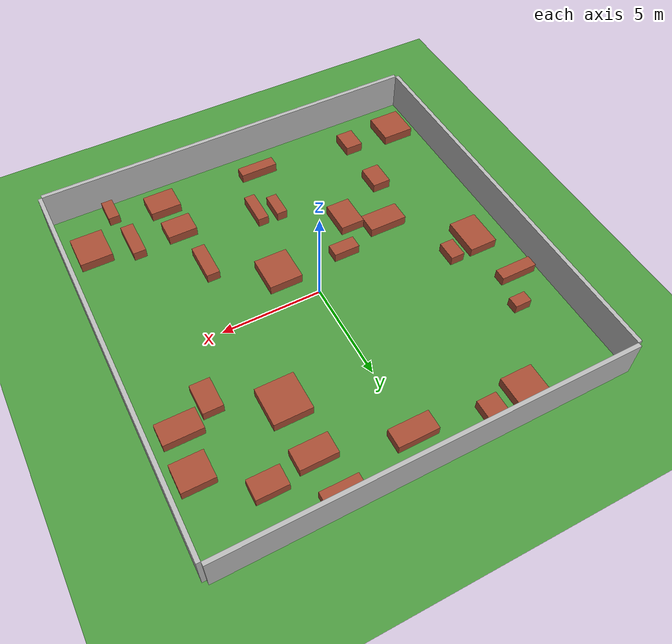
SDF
<?xml version='1.0' encoding='utf-8'?>
<sdf version="1.6"><world name="default"><physics type="ode"><real_time_update_rate>1000</real_time_update_rate><gravity>0 0 -9.81</gravity></physics><model name="ground_plane"><static>true</static><link name="ground_link"><collision name="collision"><geometry><plane><normal>0 0 1</normal><size>20 20</size></plane></geometry></collision><visual name="visual"><geometry><plane><normal>0 0 1</normal><size>20 20</size></plane></geometry><material><script><uri>file://media/materials/scripts/gazebo.material</uri><name>Gazebo/Grass</name></script></material></visual></link></model><model name="wall_north"><static>true</static><pose>0 10.1 1.0 0 0 0</pose><link name="link"><collision name="collision"><geometry><box><size>20 0.2 2.0</size></box></geometry></collision><visual name="visual"><geometry><box><size>20 0.2 2.0</size></box></geometry></visual></link></model><model name="wall_south"><static>true</static><pose>0 -10.1 1.0 0 0 0</pose><link name="link"><collision name="collision"><geometry><box><size>20 0.2 2.0</size></box></geometry></collision><visual name="visual"><geometry><box><size>20 0.2 2.0</size></box></geometry></visual></link></model><model name="wall_east"><static>true</static><pose>10.1 0 1.0 0 0 0</pose><link name="link"><collision name="collision"><geometry><box><size>0.2 20 2.0</size></box></geometry></collision><visual name="visual"><geometry><box><size>0.2 20 2.0</size></box></geometry></visual></link></model><model name="wall_west"><static>true</static><pose>-10.1 0 1.0 0 0 0</pose><link name="link"><collision name="collision"><geometry><box><size>0.2 20 2.0</size></box></geometry></collision><visual name="visual"><geometry><box><size>0.2 20 2.0</size></box></geometry></visual></link></model><include><uri>model://sun</uri></include><model name="box_0"><pose>-6.09 -8.16 0.25 0 0 0</pose><static>false</static><link name="link"><collision name="collision"><geometry><box><size>0.9 1.18 0.5</size></box></geometry></collision><visual name="visual"><geometry><box><size>0.9 1.18 0.5</size></box></geometry><material><script><uri>file://media/materials/scripts/gazebo.material</uri><name>Gazebo/Bricks</name></script></material></visual></link></model><model name="box_1"><pose>-8.72 -8.16 0.25 0 0 0</pose><static>false</static><link name="link"><collision name="collision"><geometry><box><size>1.63 1.64 0.5</size></box></geometry></collision><visual name="visual"><geometry><box><size>1.63 1.64 0.5</size></box></geometry><material><script><uri>file://media/materials/scripts/gazebo.material</uri><name>Gazebo/Bricks</name></script></material></visual></link></model><model name="box_2"><pose>1.26 -1.85 0.25 0 0 0</pose><static>false</static><link name="link"><collision name="collision"><geometry><box><size>1.67 1.81 0.5</size></box></geometry></collision><visual name="visual"><geometry><box><size>1.67 1.81 0.5</size></box></geometry><material><script><uri>file://media/materials/scripts/gazebo.material</uri><name>Gazebo/Bricks</name></script></material></visual></link></model><model name="box_3"><pose>8.85 5.92 0.25 0 0 0</pose><static>false</static><link name="link"><collision name="collision"><geometry><box><size>1.56 1.38 0.5</size></box></geometry></collision><visual name="visual"><geometry><box><size>1.56 1.38 0.5</size></box></geometry><material><script><uri>file://media/materials/scripts/gazebo.material</uri><name>Gazebo/Bricks</name></script></material></visual></link></model><model name="box_4"><pose>-0.77 -8.58 0.25 0 0 0</pose><static>false</static><link name="link"><collision name="collision"><geometry><box><size>1.94 0.58 0.5</size></box></geometry></collision><visual name="visual"><geometry><box><size>1.94 0.58 0.5</size></box></geometry><material><script><uri>file://media/materials/scripts/gazebo.material</uri><name>Gazebo/Bricks</name></script></material></visual></link></model><model name="box_5"><pose>-4.86 -2.39 0.25 0 0 0</pose><static>false</static><link name="link"><collision name="collision"><geometry><box><size>1.94 1.05 0.5</size></box></geometry></collision><visual name="visual"><geometry><box><size>1.94 1.05 0.5</size></box></geometry><material><script><uri>file://media/materials/scripts/gazebo.material</uri><name>Gazebo/Bricks</name></script></material></visual></link></model><model name="box_6"><pose>-2.19 -1.62 0.25 0 0 0</pose><static>false</static><link name="link"><collision name="collision"><geometry><box><size>1.32 0.67 0.5</size></box></geometry></collision><visual name="visual"><geometry><box><size>1.32 0.67 0.5</size></box></geometry><material><script><uri>file://media/materials/scripts/gazebo.material</uri><name>Gazebo/Bricks</name></script></material></visual></link></model><model name="box_7"><pose>4.59 -8.55 0.25 0 0 0</pose><static>false</static><link name="link"><collision name="collision"><geometry><box><size>1.56 1.26 0.5</size></box></geometry></collision><visual name="visual"><geometry><box><size>1.56 1.26 0.5</size></box></geometry><material><script><uri>file://media/materials/scripts/gazebo.material</uri><name>Gazebo/Bricks</name></script></material></visual></link></model><model name="box_8"><pose>-3.5 9.0 0.25 0 0 0</pose><static>false</static><link name="link"><collision name="collision"><geometry><box><size>0.99 0.9 0.5</size></box></geometry></collision><visual name="visual"><geometry><box><size>0.99 0.9 0.5</size></box></geometry><material><script><uri>file://media/materials/scripts/gazebo.material</uri><name>Gazebo/Bricks</name></script></material></visual></link></model><model name="box_9"><pose>-6.76 0.98 0.25 0 0 0</pose><static>false</static><link name="link"><collision name="collision"><geometry><box><size>0.71 1.03 0.5</size></box></geometry></collision><visual name="visual"><geometry><box><size>0.71 1.03 0.5</size></box></geometry><material><script><uri>file://media/materials/scripts/gazebo.material</uri><name>Gazebo/Bricks</name></script></material></visual></link></model><model name="box_10"><pose>6.38 7.74 0.25 0 0 0</pose><static>false</static><link name="link"><collision name="collision"><geometry><box><size>1.52 0.99 0.5</size></box></geometry></collision><visual name="visual"><geometry><box><size>1.52 0.99 0.5</size></box></geometry><material><script><uri>file://media/materials/scripts/gazebo.material</uri><name>Gazebo/Bricks</name></script></material></visual></link></model><model name="box_11"><pose>0.02 8.42 0.25 0 0 0</pose><static>false</static><link name="link"><collision name="collision"><geometry><box><size>1.99 0.94 0.5</size></box></geometry></collision><visual name="visual"><geometry><box><size>1.99 0.94 0.5</size></box></geometry><material><script><uri>file://media/materials/scripts/gazebo.material</uri><name>Gazebo/Bricks</name></script></material></visual></link></model><model name="box_12"><pose>-6.0 -5.12 0.25 0 0 0</pose><static>false</static><link name="link"><collision name="collision"><geometry><box><size>0.93 1.27 0.5</size></box></geometry></collision><visual name="visual"><geometry><box><size>0.93 1.27 0.5</size></box></geometry><material><script><uri>file://media/materials/scripts/gazebo.material</uri><name>Gazebo/Bricks</name></script></material></visual></link></model><model name="box_13"><pose>4.44 -6.61 0.25 0 0 0</pose><static>false</static><link name="link"><collision name="collision"><geometry><box><size>1.47 1.12 0.5</size></box></geometry></collision><visual name="visual"><geometry><box><size>1.47 1.12 0.5</size></box></geometry><material><script><uri>file://media/materials/scripts/gazebo.material</uri><name>Gazebo/Bricks</name></script></material></visual></link></model><model name="box_14"><pose>7.1 -9.23 0.25 0 0 0</pose><static>false</static><link name="link"><collision name="collision"><geometry><box><size>0.56 1.21 0.5</size></box></geometry></collision><visual name="visual"><geometry><box><size>0.56 1.21 0.5</size></box></geometry><material><script><uri>file://media/materials/scripts/gazebo.material</uri><name>Gazebo/Bricks</name></script></material></visual></link></model><model name="box_15"><pose>-7.86 5.01 0.25 0 0 0</pose><static>false</static><link name="link"><collision name="collision"><geometry><box><size>0.84 0.58 0.5</size></box></geometry></collision><visual name="visual"><geometry><box><size>0.84 0.58 0.5</size></box></geometry><material><script><uri>file://media/materials/scripts/gazebo.material</uri><name>Gazebo/Bricks</name></script></material></visual></link></model><model name="box_16"><pose>-8.26 0.54 0.25 0 0 0</pose><static>false</static><link name="link"><collision name="collision"><geometry><box><size>1.43 1.9 0.5</size></box></geometry></collision><visual name="visual"><geometry><box><size>1.43 1.9 0.5</size></box></geometry><material><script><uri>file://media/materials/scripts/gazebo.material</uri><name>Gazebo/Bricks</name></script></material></visual></link></model><model name="box_17"><pose>3.89 9.32 0.25 0 0 0</pose><static>false</static><link name="link"><collision name="collision"><geometry><box><size>1.82 0.54 0.5</size></box></geometry></collision><visual name="visual"><geometry><box><size>1.82 0.54 0.5</size></box></geometry><material><script><uri>file://media/materials/scripts/gazebo.material</uri><name>Gazebo/Bricks</name></script></material></visual></link></model><model name="box_18"><pose>4.14 7.39 0.25 0 0 0</pose><static>false</static><link name="link"><collision name="collision"><geometry><box><size>1.81 1.05 0.5</size></box></geometry></collision><visual name="visual"><geometry><box><size>1.81 1.05 0.5</size></box></geometry><material><script><uri>file://media/materials/scripts/gazebo.material</uri><name>Gazebo/Bricks</name></script></material></visual></link></model><model name="box_19"><pose>-3.27 -3.48 0.25 0 0 0</pose><static>false</static><link name="link"><collision name="collision"><geometry><box><size>1.22 1.64 0.5</size></box></geometry></collision><visual name="visual"><geometry><box><size>1.22 1.64 0.5</size></box></geometry><material><script><uri>file://media/materials/scripts/gazebo.material</uri><name>Gazebo/Bricks</name></script></material></visual></link></model><model name="box_20"><pose>-0.5 -5.66 0.25 0 0 0</pose><static>false</static><link name="link"><collision name="collision"><geometry><box><size>0.54 1.29 0.5</size></box></geometry></collision><visual name="visual"><geometry><box><size>0.54 1.29 0.5</size></box></geometry><material><script><uri>file://media/materials/scripts/gazebo.material</uri><name>Gazebo/Bricks</name></script></material></visual></link></model><model name="box_21"><pose>7.01 2.98 0.25 0 0 0</pose><static>false</static><link name="link"><collision name="collision"><geometry><box><size>0.97 1.54 0.5</size></box></geometry></collision><visual name="visual"><geometry><box><size>0.97 1.54 0.5</size></box></geometry><material><script><uri>file://media/materials/scripts/gazebo.material</uri><name>Gazebo/Bricks</name></script></material></visual></link></model><model name="box_22"><pose>6.75 -6.84 0.25 0 0 0</pose><static>false</static><link name="link"><collision name="collision"><geometry><box><size>0.64 1.9 0.5</size></box></geometry></collision><visual name="visual"><geometry><box><size>0.64 1.9 0.5</size></box></geometry><material><script><uri>file://media/materials/scripts/gazebo.material</uri><name>Gazebo/Bricks</name></script></material></visual></link></model><model name="box_23"><pose>-5.34 8.99 0.25 0 0 0</pose><static>false</static><link name="link"><collision name="collision"><geometry><box><size>1.6 1.76 0.5</size></box></geometry></collision><visual name="visual"><geometry><box><size>1.6 1.76 0.5</size></box></geometry><material><script><uri>file://media/materials/scripts/gazebo.material</uri><name>Gazebo/Bricks</name></script></material></visual></link></model><model name="box_24"><pose>4.15 4.63 0.25 0 0 0</pose><static>false</static><link name="link"><collision name="collision"><geometry><box><size>1.88 1.96 0.5</size></box></geometry></collision><visual name="visual"><geometry><box><size>1.88 1.96 0.5</size></box></geometry><material><script><uri>file://media/materials/scripts/gazebo.material</uri><name>Gazebo/Bricks</name></script></material></visual></link></model><model name="box_25"><pose>4.13 -3.93 0.25 0 0 0</pose><static>false</static><link name="link"><collision name="collision"><geometry><box><size>0.65 1.91 0.5</size></box></geometry></collision><visual name="visual"><geometry><box><size>0.65 1.91 0.5</size></box></geometry><material><script><uri>file://media/materials/scripts/gazebo.material</uri><name>Gazebo/Bricks</name></script></material></visual></link></model><model name="box_26"><pose>0.5 -5.95 0.25 0 0 0</pose><static>false</static><link name="link"><collision name="collision"><geometry><box><size>0.55 1.72 0.5</size></box></geometry></collision><visual name="visual"><geometry><box><size>0.55 1.72 0.5</size></box></geometry><material><script><uri>file://media/materials/scripts/gazebo.material</uri><name>Gazebo/Bricks</name></script></material></visual></link></model><model name="box_27"><pose>-8.8 3.38 0.25 0 0 0</pose><static>false</static><link name="link"><collision name="collision"><geometry><box><size>1.87 0.59 0.5</size></box></geometry></collision><visual name="visual"><geometry><box><size>1.87 0.59 0.5</size></box></geometry><material><script><uri>file://media/materials/scripts/gazebo.material</uri><name>Gazebo/Bricks</name></script></material></visual></link></model><model name="box_28"><pose>8.58 3.81 0.25 0 0 0</pose><static>false</static><link name="link"><collision name="collision"><geometry><box><size>1.87 1.1 0.5</size></box></geometry></collision><visual name="visual"><geometry><box><size>1.87 1.1 0.5</size></box></geometry><material><script><uri>file://media/materials/scripts/gazebo.material</uri><name>Gazebo/Bricks</name></script></material></visual></link></model><model name="box_29"><pose>8.75 -7.25 0.25 0 0 0</pose><static>false</static><link name="link"><collision name="collision"><geometry><box><size>1.6 1.76 0.5</size></box></geometry></collision><visual name="visual"><geometry><box><size>1.6 1.76 0.5</size></box></geometry><material><script><uri>file://media/materials/scripts/gazebo.material</uri><name>Gazebo/Bricks</name></script></material></visual></link></model></world></sdf>
